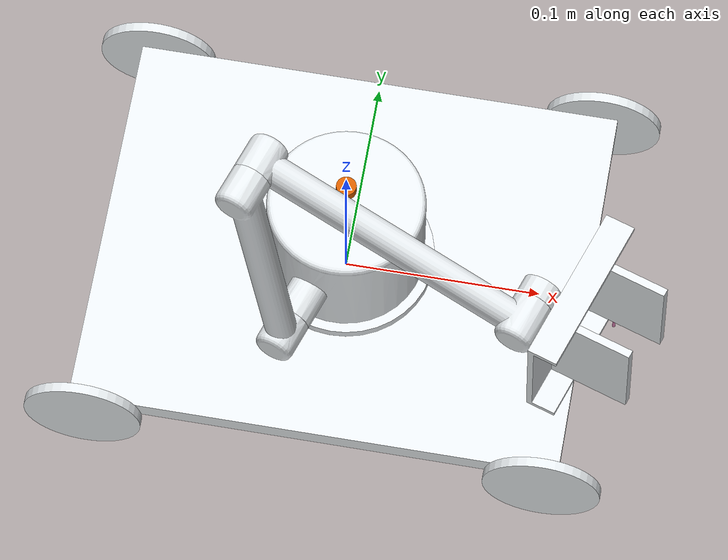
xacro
<?xml version="1.0"?>
<robot xmlns:xacro="http://www.ros.org/wiki/xacro" name="car_bot_urdf">
    <xacro:arg name="initial_positions_file" default="initial_positions.yaml" />

    <!-- Import car_bot_urdf urdf file -->
    <xacro:include filename="$(find car_bot_urdf)/urdf/car_bot_moveit.urdf" />

    <!-- Import control_xacro -->
    <xacro:include filename="car_bot_urdf.ros2_control.xacro" />

    <xacro:car_bot_urdf_ros2_control name="FakeSystem" initial_positions_file="$(arg initial_positions_file)"/>

</robot>

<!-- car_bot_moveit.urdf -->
<robot name="car_bot_urdf" xmlns:xacro="http://ros.org/wiki/xacro">
  <link
    name="base_link">
    <visual>
      <origin
        xyz="0 0 0"
        rpy="0 0 0" />
      <geometry>
        <mesh
          filename="package://car_bot_urdf/meshes/base_link.STL" />
      </geometry>
      <material
        name="">
        <color
          rgba="0.898039215686275 0.917647058823529 0.929411764705882 1" />
      </material>
    </visual>
    <collision>
      <origin
        xyz="0 0 0"
        rpy="0 0 0" />
      <geometry>
        <mesh
          filename="package://car_bot_urdf/meshes/base_link.STL" />
      </geometry>
    </collision>
  </link>
  <link name="chassis_inertia">
  <inertial>
      <origin
        xyz="-4.33680868994202E-18 6.93889390390723E-18 0.00499472100150436"
        rpy="0 0 0" />
      <mass
        value="1.35091102161818" />
      <inertia
        ixx="0.00452029389532666"
        ixy="5.5695104618961E-19"
        ixz="7.72756476211676E-21"
        iyy="0.00705560761614026"
        iyz="2.58303019056871E-19"
        izz="0.0115532852001033" />
    </inertial>
  </link>
  <joint name="base_inertia_joint" type="fixed">
  <parent link="base_link"/>
  <child link="chassis_inertia"/>
  <origin xyz="0 0 0" rpy="0 0 0"/>
</joint>

  <link
    name="wheel_lf">
    <inertial>
      <origin
        xyz="1.38777878078145E-17 0.00747787610619469 1.73472347597681E-18"
        rpy="0 0 0" />
      <mass
        value="0.0383399967444098" />
      <inertia
        ixx="8.67259593990343E-06"
        ixy="-1.06396513069382E-22"
        ixz="8.60614249228914E-22"
        iyy="1.71769971255087E-05"
        iyz="1.02728784668032E-21"
        izz="8.67259593990343E-06" />
    </inertial>
    <visual>
      <origin
        xyz="0 0 0"
        rpy="0 0 0" />
      <geometry>
        <mesh
          filename="package://car_bot_urdf/meshes/wheel_lf.STL" />
      </geometry>
      <material
        name="">
        <color
          rgba="0.898039215686275 0.917647058823529 0.929411764705882 1" />
      </material>
    </visual>
    <collision>
      <origin
        xyz="0 0 0"
        rpy="0 0 0" />
      <geometry>
        <mesh
          filename="package://car_bot_urdf/meshes/wheel_lf.STL" />
      </geometry>
    </collision>
  </link>
  <joint
    name="wheel_lf_joint"
    type="continuous">
    <origin
      xyz="0.1175 0.0955 -0.00250000000000001"
      rpy="0 0 0" />
    <parent
      link="base_link" />
    <child
      link="wheel_lf" />
    <axis
      xyz="0 1 0" />
  </joint>
  <transmission name="wheel_lf_trans">
    <type>transmission_interface/SimpleTransmission</type>
    <joint name="wheel_lf_joint">
        <hardwareInterface>hardware_interface/VelocityJointInterface</hardwareInterface>
    </joint>
    <actuator name="wheel_lf_motor">
        <mechanicalReduction>1</mechanicalReduction>
    </actuator>
  </transmission>

  <link
    name="wheel_rf">
    <inertial>
      <origin
        xyz="0 -0.00747787610619471 0"
        rpy="0 0 0" />
      <mass
        value="0.0383399967444099" />
      <inertia
        ixx="8.67259593990346E-06"
        ixy="8.78384570048759E-23"
        ixz="2.0573537295173E-38"
        iyy="1.71769971255088E-05"
        iyz="3.0994479953322E-38"
        izz="8.67259593990346E-06" />
    </inertial>
    <visual>
      <origin
        xyz="0 0 0"
        rpy="0 0 0" />
      <geometry>
        <mesh
          filename="package://car_bot_urdf/meshes/wheel_rf.STL" />
      </geometry>
      <material
        name="">
        <color
          rgba="0.898039215686275 0.917647058823529 0.929411764705882 1" />
      </material>
    </visual>
    <collision>
      <origin
        xyz="0 0 0"
        rpy="0 0 0" />
      <geometry>
        <mesh
          filename="package://car_bot_urdf/meshes/wheel_rf.STL" />
      </geometry>
    </collision>
  </link>
  <joint
    name="wheel_rf_joint"
    type="continuous">
    <origin
      xyz="0.1175 -0.0955 -0.0025"
      rpy="0 0 0" />
    <parent
      link="base_link" />
    <child
      link="wheel_rf" />
    <axis
      xyz="0 1 0" />
  </joint>
  <transmission name="wheel_rf_trans">
    <type>transmission_interface/SimpleTransmission</type>
    <joint name="wheel_rf_joint">
        <hardwareInterface>hardware_interface/VelocityJointInterface</hardwareInterface>
    </joint>
    <actuator name="wheel_rf_motor">
        <mechanicalReduction>1</mechanicalReduction>
    </actuator>
  </transmission>

  <link
    name="wheel_lr">
    <inertial>
      <origin
        xyz="1.38777878078145E-17 0.00747787610619469 1.73472347597681E-18"
        rpy="0 0 0" />
      <mass
        value="0.0383399967444098" />
      <inertia
        ixx="8.67259593990343E-06"
        ixy="-1.80827755721878E-22"
        ixz="1.83131721594423E-22"
        iyy="1.71769971255087E-05"
        iyz="9.95486359850548E-22"
        izz="8.67259593990344E-06" />
    </inertial>
    <visual>
      <origin
        xyz="0 0 0"
        rpy="0 0 0" />
      <geometry>
        <mesh
          filename="package://car_bot_urdf/meshes/wheel_lr.STL" />
      </geometry>
      <material
        name="">
        <color
          rgba="0.898039215686275 0.917647058823529 0.929411764705882 1" />
      </material>
    </visual>
    <collision>
      <origin
        xyz="0 0 0"
        rpy="0 0 0" />
      <geometry>
        <mesh
          filename="package://car_bot_urdf/meshes/wheel_lr.STL" />
      </geometry>
    </collision>
  </link>
  <joint
    name="wheel_lr_joint"
    type="continuous">
    <origin
      xyz="-0.1175 0.0955 -0.00250000000000001"
      rpy="0 0 0" />
    <parent
      link="base_link" />
    <child
      link="wheel_lr" />
    <axis
      xyz="0 1 0" />
  </joint>
  <transmission name="wheel_lr_trans">
    <type>transmission_interface/SimpleTransmission</type>
    <joint name="wheel_lr_joint">
        <hardwareInterface>hardware_interface/VelocityJointInterface</hardwareInterface>
    </joint>
    <actuator name="wheel_lr_motor">
        <mechanicalReduction>1</mechanicalReduction>
    </actuator>
  </transmission>
  <link
    name="wheel_rr">
    <inertial>
      <origin
        xyz="-1.38777878078145E-17 -0.00747787610619471 0"
        rpy="0 0 0" />
      <mass
        value="0.0383399967444099" />
      <inertia
        ixx="8.67259593990346E-06"
        ixy="2.3124228310078E-22"
        ixz="-3.6627657488302E-22"
        iyy="1.71769971255088E-05"
        iyz="2.14340930596089E-23"
        izz="8.67259593990346E-06" />
    </inertial>
    <visual>
      <origin
        xyz="0 0 0"
        rpy="0 0 0" />
      <geometry>
        <mesh
          filename="package://car_bot_urdf/meshes/wheel_rr.STL" />
      </geometry>
      <material
        name="">
        <color
          rgba="0.898039215686275 0.917647058823529 0.929411764705882 1" />
      </material>
    </visual>
    <collision>
      <origin
        xyz="0 0 0"
        rpy="0 0 0" />
      <geometry>
        <mesh
          filename="package://car_bot_urdf/meshes/wheel_rr.STL" />
      </geometry>
    </collision>
  </link>
  <joint
    name="wheel_rr_joint"
    type="continuous">
    <origin
      xyz="-0.1175 -0.0955 -0.0025"
      rpy="0 0 0" />
    <parent
      link="base_link" />
    <child
      link="wheel_rr" />
    <axis
      xyz="0 1 0" />
  </joint>
  <transmission name="wheel_rr_trans">
    <type>transmission_interface/SimpleTransmission</type>
    <joint name="wheel_rr_joint">
        <hardwareInterface>hardware_interface/VelocityJointInterface</hardwareInterface>
    </joint>
    <actuator name="wheel_rr_motor">
        <mechanicalReduction>1</mechanicalReduction>
    </actuator>
  </transmission>
  <link
    name="arm_base">
    <inertial>
      <origin
        xyz="-0.000298297348525992 -0.000877787621383082 0.0319114539268278"
        rpy="0 0 0" />
      <mass
        value="0.91596516059112" />
      <inertia
        ixx="0.00073168986505667"
        ixy="-1.26761193633643E-05"
        ixz="8.43820455323346E-07"
        iyy="0.000698696851498368"
        iyz="2.48317991681916E-06"
        izz="0.000778870658078705" />
    </inertial>
    <visual>
      <origin
        xyz="0 0 0"
        rpy="0 0 0" />
      <geometry>
        <mesh
          filename="package://car_bot_urdf/meshes/arm_base.STL" />
      </geometry>
      <material
        name="">
        <color
          rgba="0.898039215686275 0.917647058823529 0.929411764705882 1" />
      </material>
    </visual>
    <collision>
      <origin
        xyz="0 0 0"
        rpy="0 0 0" />
      <geometry>
        <mesh
          filename="package://car_bot_urdf/meshes/arm_base.STL" />
      </geometry>
    </collision>
  </link>
  <joint
    name="joint1"
    type="revolute">
    <origin
      xyz="0 0 0.01"
      rpy="0 0 0" />
    <parent
      link="base_link" />
    <child
      link="arm_base" />
    <axis
      xyz="0 0 1" />
    <limit effort="10.0" velocity="1.0" lower="-3.14" upper="3.14" />
    <dynamics damping="0.01" friction="0.5" />
  </joint>
  <link
    name="link_1">
    <inertial>
      <origin
        xyz="-0.0115375441031865 -0.00365718446832064 0.0723463351317531"
        rpy="0 0 0" />
      <mass
        value="0.0996158414655172" />
      <inertia
        ixx="0.000254336078927667"
        ixy="1.33882780081127E-06"
        ixz="3.18886970748264E-05"
        iyy="0.000257820495196919"
        iyz="-1.08370964339216E-05"
        izz="8.43715586331683E-06" />
    </inertial>
    <visual>
      <origin
        xyz="0 0 0"
        rpy="0 0 0" />
      <geometry>
        <mesh
          filename="package://car_bot_urdf/meshes/link_1.STL" />
      </geometry>
      <material
        name="">
        <color
          rgba="0.898039215686275 0.917647058823529 0.929411764705882 1" />
      </material>
    </visual>
    <collision>
      <origin
        xyz="0 0 0"
        rpy="0 0 0" />
      <geometry>
        <mesh
          filename="package://car_bot_urdf/meshes/link_1.STL" />
      </geometry>
    </collision>
  </link>
  <joint
    name="joint2"
    type="revolute">
    <origin
      xyz="-0.0193060937297844 -0.0568091079396324 0.035"
      rpy="0 0 0" />
    <parent
      link="arm_base" />
    <child
      link="link_1" />
    <axis
      xyz="0.321768228829737 0.946818465660537 0" />
    <limit effort="10.0" velocity="1.0" lower="-3.14" upper="3.14" />
    <dynamics damping="0.01" friction="0.5" />
  </joint>
  <link
    name="link_2">
    <inertial>
      <origin
        xyz="0.072223851051241 -0.0131618914471062 -0.0175795140660839"
        rpy="0 0 0" />
      <mass
        value="0.108284756759418" />
      <inertia
        ixx="5.02633331609213E-05"
        ixy="8.54163427477755E-05"
        ixz="6.51198170052858E-05"
        iyy="0.000275869982876407"
        iyz="-2.18739586733741E-05"
        izz="0.000288713816055805" />
    </inertial>
    <visual>
      <origin
        xyz="0 0 0"
        rpy="0 0 0" />
      <geometry>
        <mesh
          filename="package://car_bot_urdf/meshes/link_2.STL" />
      </geometry>
      <material
        name="">
        <color
          rgba="0.898039215686275 0.917647058823529 0.929411764705882 1" />
      </material>
    </visual>
    <collision>
      <origin
        xyz="0 0 0"
        rpy="0 0 0" />
      <geometry>
        <mesh
          filename="package://car_bot_urdf/meshes/link_2.STL" />
      </geometry>
    </collision>
  </link>
  <joint
    name="joint3"
    type="revolute">
    <origin
      xyz="-0.0184576025605661 0.00627265975449014 0.144692676550407"
      rpy="0 0 0" />
    <parent
      link="link_1" />
    <child
      link="link_2" />
    <axis
      xyz="-0.321768228829737 -0.946818465660537 0" />
    <limit effort="10.0" velocity="1.0" lower="-3.14" upper="3.14" />
    <dynamics damping="0.01" friction="0.5" />
  </joint>
  <link
    name="link_3">
    <inertial>
      <origin
        xyz="0.0162922995004058 -0.00225957863421151 0.000372789225122044"
        rpy="0 0 0" />
      <mass
        value="0.0594973856516304" />
      <inertia
        ixx="4.77523268570868E-05"
        ixy="-7.44511024754089E-06"
        ixz="4.28209493437805E-07"
        iyy="2.80501822186981E-05"
        iyz="-1.43112566897626E-07"
        izz="3.06964480583462E-05" />
    </inertial>
    <visual>
      <origin
        xyz="0 0 0"
        rpy="0 0 0" />
      <geometry>
        <mesh
          filename="package://car_bot_urdf/meshes/link_3.STL" />
      </geometry>
      <material
        name="">
        <color
          rgba="0.898039215686275 0.917647058823529 0.929411764705882 1" />
      </material>
    </visual>
    <collision>
      <origin
        xyz="0 0 0"
        rpy="0 0 0" />
      <geometry>
        <mesh
          filename="package://car_bot_urdf/meshes/link_3.STL" />
      </geometry>
    </collision>
  </link>
  <joint
    name="joint4"
    type="continuous">
    <origin
      xyz="0.142077143852359 -0.0229356647785824 -0.0343517172193877"
      rpy="0 0 0" />
    <parent
      link="link_2" />
    <child
      link="link_3" />
    <axis
      xyz="0.321768228829742 0.946818465660536 0" />
    <limit effort="10.0" velocity="1.0" lower="-3.14" upper="3.14" />
    <dynamics damping="0.01" friction="0.5" />
  </joint>
  <link
    name="grip_1">
    <inertial>
      <origin
        xyz="0.000643536457659466 0.00189363693132108 0"
        rpy="0 0 0" />
      <mass
        value="0.02376" />
      <inertia
        ixx="6.34455173885966E-06"
        ixy="9.55956619567387E-07"
        ixz="6.16209123374935E-08"
        iyy="8.83262624703443E-06"
        iyz="-2.09413446619627E-08"
        izz="3.20118201410595E-06" />
    </inertial>
    <visual>
      <origin
        xyz="0 0 0"
        rpy="0 0 0" />
      <geometry>
        <mesh
          filename="package://car_bot_urdf/meshes/grip_1.STL" />
      </geometry>
      <material
        name="">
        <color
          rgba="0.898039215686275 0.917647058823529 0.929411764705882 1" />
      </material>
    </visual>
    <collision>
      <origin
        xyz="0 0 0"
        rpy="0 0 0" />
      <geometry>
        <mesh
          filename="package://car_bot_urdf/meshes/grip_1.STL" />
      </geometry>
    </collision>
  </link>
  <joint
    name="or_1"
    type="prismatic">
    <origin
      xyz="0.0304994638655437 -0.0283198516302344 0.000876759691081697"
      rpy="0 0 0" />
    <parent
      link="link_3" />
    <child
      link="grip_1" />
    <axis
      xyz="-0.321768228829738 -0.946818465660537 0" />
    <limit
      lower="-0.1"
      upper="0.1"
      effort="100"
      velocity="1" />
  </joint>
  <link
    name="grip_2">
    <inertial>
      <origin
        xyz="-0.000643536457659466 -0.00189363693132109 -2.77555756156289E-17"
        rpy="0 0 0" />
      <mass
        value="0.02376" />
      <inertia
        ixx="6.34455173885965E-06"
        ixy="9.55956619567385E-07"
        ixz="6.16209123374903E-08"
        iyy="8.83262624703442E-06"
        iyz="-2.0941344661962E-08"
        izz="3.20118201410595E-06" />
    </inertial>
    <visual>
      <origin
        xyz="0 0 0"
        rpy="0 0 0" />
      <geometry>
        <mesh
          filename="package://car_bot_urdf/meshes/grip_2.STL" />
      </geometry>
      <material
        name="">
        <color
          rgba="0.898039215686275 0.917647058823529 0.929411764705882 1" />
      </material>
    </visual>
    <collision>
      <origin
        xyz="0 0 0"
        rpy="0 0 0" />
      <geometry>
        <mesh
          filename="package://car_bot_urdf/meshes/grip_2.STL" />
      </geometry>
    </collision>
  </link>
  <joint
    name="or_2"
    type="prismatic">
    <origin
      xyz="0.0433701930187332 0.00955288699618709 0.000876759691081697"
      rpy="0 0 0" />
    <parent
      link="link_3" />
    <child
      link="grip_2" />
    <axis
      xyz="-0.321768228829738 -0.946818465660537 0" />
    <limit
      lower="-0.1"
      upper="0.1"
      effort="100"
      velocity="1" />
  </joint>

  <link name="imu_link">
    <visual>
      <geometry>
        <box size="0.01 0.01 0.01"/>
      </geometry>
    </visual>

    <collision>
      <geometry>
        <box size="0.01 0.01 0.01"/>
      </geometry>
    </collision>

    <inertial>
      <mass value="0.01"/>
      <origin xyz="0 0 0" rpy="0 0 0"/>
      <inertia
        ixx="0.000033" ixy="0" ixz="0"
        iyy="0.000033" iyz="0"
        izz="0.000033"/>
    </inertial>
  </link>

  <joint name="imu_joint" type="fixed">
    <parent link="base_link"/>
    <child link="imu_link"/>
    <origin xyz="0 0 -0.005"/>
  </joint>

 <gazebo reference="imu_link">
    <sensor name="imu_sensor" type="imu">
    <plugin filename="libgazebo_ros_imu_sensor.so" name="imu_plugin">
        <ros>
          <remapping>~/out:=imu</remapping>
        </ros>
        <initial_orientation_as_reference>false</initial_orientation_as_reference>
      </plugin>
      <always_on>true</always_on>
      <update_rate>100</update_rate>
      <visualize>true</visualize>
      <imu>
        <angular_velocity>
          <x>
            <noise type="gaussian">
              <mean>0.0</mean>
              <stddev>2e-4</stddev>
              <bias_mean>0.0000075</bias_mean>
              <bias_stddev>0.0000008</bias_stddev>
            </noise>
          </x>
          <y>
            <noise type="gaussian">
              <mean>0.0</mean>
              <stddev>2e-4</stddev>
              <bias_mean>0.0000075</bias_mean>
              <bias_stddev>0.0000008</bias_stddev>
            </noise>
          </y>
          <z>
            <noise type="gaussian">
              <mean>0.0</mean>
              <stddev>2e-4</stddev>
              <bias_mean>0.0000075</bias_mean>
              <bias_stddev>0.0000008</bias_stddev>
            </noise>
          </z>
        </angular_velocity>
        <linear_acceleration>
          <x>
            <noise type="gaussian">
              <mean>0.0</mean>
              <stddev>1.7e-2</stddev>
              <bias_mean>0.1</bias_mean>
              <bias_stddev>0.001</bias_stddev>
            </noise>
          </x>
          <y>
            <noise type="gaussian">
              <mean>0.0</mean>
              <stddev>1.7e-2</stddev>
              <bias_mean>0.1</bias_mean>
              <bias_stddev>0.001</bias_stddev>
            </noise>
          </y>
          <z>
            <noise type="gaussian">
              <mean>0.0</mean>
              <stddev>1.7e-2</stddev>
              <bias_mean>0.1</bias_mean>
              <bias_stddev>0.001</bias_stddev>
            </noise>
          </z>
        </linear_acceleration>
      </imu>
    </sensor>
  </gazebo>

  <gazebo>
    <plugin name='diff_drive' filename='libgazebo_ros_diff_drive.so'>
      <ros>
        <remapping>cmd_vel:=/cmd_vel_nav</remapping>
      </ros>
      <update_rate>50.0</update_rate>

      <!-- 主动轮 -->
      <left_joint>wheel_lf_joint</left_joint>
      <right_joint>wheel_rf_joint</right_joint>

      <!-- 轮距与直径 -->
      <wheel_separation>0.211</wheel_separation>
      <wheel_diameter>0.06</wheel_diameter>

      <!-- 限制 -->
      <max_wheel_torque>1</max_wheel_torque>
      <max_wheel_acceleration>20.0</max_wheel_acceleration>

      <!-- 输出 -->
      <publish_odom>true</publish_odom>
      <publish_odom_tf>false</publish_odom_tf>
      <publish_wheel_tf>false</publish_wheel_tf>

      <odometry_frame>odom</odometry_frame>
      <robot_base_frame>base_link</robot_base_frame>
    </plugin>
  </gazebo>
  <link name="lidar_link">
  <inertial>
    <origin xyz="0 0 0" rpy="0 0 0"/>
    <mass value="0.125"/>
    <inertia ixx="0.001"  ixy="0"  ixz="0" iyy="0.001" iyz="0" izz="0.001" />
  </inertial>

  <collision>
    <origin xyz="0 0 0" rpy="0 0 0"/>
    <geometry>
       <cylinder radius="0.00508" length="0.0055"/>
    </geometry>
  </collision>

  <visual>
    <origin xyz="0 0 0" rpy="0 0 0"/>
    <geometry>
       <cylinder radius="0.00508" length="0.0055"/>
    </geometry>
  </visual>
</link>

<joint name="lidar_joint" type="fixed">
  <parent link="base_link"/>
  <child link="lidar_link"/>
  <origin xyz="0 0 0.09" rpy="0 0 0"/>
</joint>

<gazebo reference="lidar_link">
  <sensor name="lidar" type="ray">
    <always_on>true</always_on>
    <visualize>true</visualize>
    <update_rate>20</update_rate>
    <ray>
      <scan>
        <horizontal>
          <samples>360</samples>
          <resolution>1.000000</resolution>
          <min_angle>0.000000</min_angle>
          <max_angle>6.280000</max_angle>
        </horizontal>
      </scan>
      <range>
        <min>0.090000</min>
        <max>3.5</max>
        <resolution>0.015000</resolution>
      </range>
      <noise>
        <type>gaussian</type>
        <mean>0.0</mean>
        <stddev>0.01</stddev>
      </noise>
    </ray>
    <plugin name="scan" filename="libgazebo_ros_ray_sensor.so">
      <ros>
        <remapping>~/out:=scan</remapping>
      </ros>
      <output_type>sensor_msgs/LaserScan</output_type>
      <frame_name>lidar_link</frame_name>
    </plugin>
  </sensor>
</gazebo>
<link name="camera_link">
  <visual>
    <origin xyz="0 0 0" rpy="0 0 0"/>
    <geometry>
      <box size="0.0015 0.0130 0.022"/>
    </geometry>
  </visual>

  <collision>
    <origin xyz="0 0 0" rpy="0 0 0"/>
    <geometry>
      <box size="0.0015 0.0130 0.022"/>
    </geometry>
  </collision>

  <inertial>
    <origin xyz="0 0 0" rpy="0 0 0"/>
    <mass value="0.035"/>
    <inertia ixx="0.001"  ixy="0"  ixz="0" iyy="0.001" iyz="0" izz="0.001" />
  </inertial>
</link>

<joint name="camera_joint" type="fixed">
  <parent link="base_link"/>
  <child link="camera_link"/>
  <origin xyz="0.14 0 0" rpy="0 0 0"/>
</joint>

<link name="camera_depth_frame"/>

<joint name="camera_depth_joint" type="fixed">
  <origin xyz="0 0 0" rpy="-1.5707 0 -1.5707"/>
  <parent link="camera_link"/>
  <child link="camera_depth_frame"/>
</joint>

<gazebo reference="camera_link">
  <sensor name="depth_camera" type="depth">
    <visualize>true</visualize>
    <update_rate>30.0</update_rate>
    <camera name="camera">
      <horizontal_fov>1.047198</horizontal_fov>
      <image>
        <width>640</width>
        <height>480</height>
        <format>R8G8B8</format>
      </image>
      <clip>
        <near>0.05</near>
        <far>3</far>
      </clip>
    </camera>
    <plugin name="depth_camera_controller" filename="libgazebo_ros_camera.so">
      <baseline>0.2</baseline>
      <alwaysOn>true</alwaysOn>
      <updateRate>0.0</updateRate>
      <frame_name>camera_depth_frame</frame_name>
      <pointCloudCutoff>0.5</pointCloudCutoff>
      <pointCloudCutoffMax>3.0</pointCloudCutoffMax>
      <distortionK1>0</distortionK1>
      <distortionK2>0</distortionK2>
      <distortionK3>0</distortionK3>
      <distortionT1>0</distortionT1>
      <distortionT2>0</distortionT2>
      <CxPrime>0</CxPrime>
      <Cx>0</Cx>
      <Cy>0</Cy>
      <focalLength>0</focalLength>
      <hackBaseline>0</hackBaseline>
    </plugin>
  </sensor>
</gazebo>
<gazebo>
    <plugin name="gazebo_ros_joint_state_publisher" filename="libgazebo_ros_joint_state_publisher.so">
      <ros>
        <remapping>~/out:=joint_states</remapping>
      </ros>
      <update_rate>30</update_rate>

      <joint_name>wheel_lf_joint</joint_name>
      <joint_name>wheel_rf_joint</joint_name>
      <joint_name>wheel_lr_joint</joint_name>
      <joint_name>wheel_rr_joint</joint_name>

    </plugin>
  </gazebo>
<gazebo>
    <plugin filename="libgazebo_ros2_control.so" name="gazebo_ros2_control">
      <parameters>$(find car_bot_urdf)/config/arm_controller.yaml</parameters>
    </plugin>
  </gazebo>
<ros2_control name="GazeboSystem" type="system">
    <hardware>
      <plugin>gazebo_ros2_control/GazeboSystem</plugin>
    </hardware>

    <joint name="joint1">
      <command_interface name="position"/>
      <state_interface name="position"/>
      <state_interface name="velocity"/>
    </joint>
    <joint name="joint2">
      <command_interface name="position"/>
      <state_interface name="position"/>
      <state_interface name="velocity"/>
    </joint>
    <joint name="joint3">
      <command_interface name="position"/>
      <state_interface name="position"/>
      <state_interface name="velocity"/>
    </joint>
    <joint name="joint4">
      <command_interface name="position"/>
      <state_interface name="position"/>
      <state_interface name="velocity"/>
    </joint>

    <joint name="or_1">
      <command_interface name="position"/>
      <state_interface name="position"/>
      <state_interface name="velocity"/>
    </joint>
    <joint name="or_2">
      <command_interface name="position"/>
      <state_interface name="position"/>
      <state_interface name="velocity"/>
    </joint>
  </ros2_control>
</robot>
